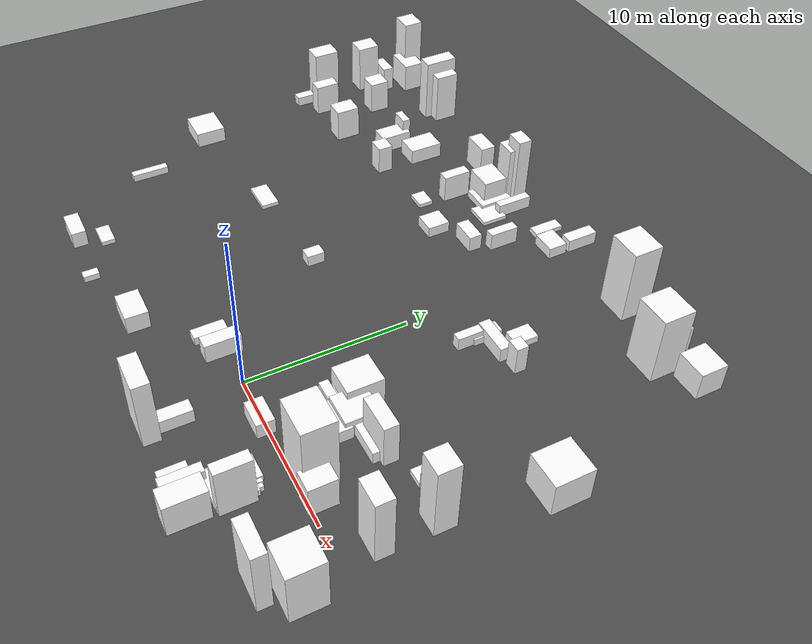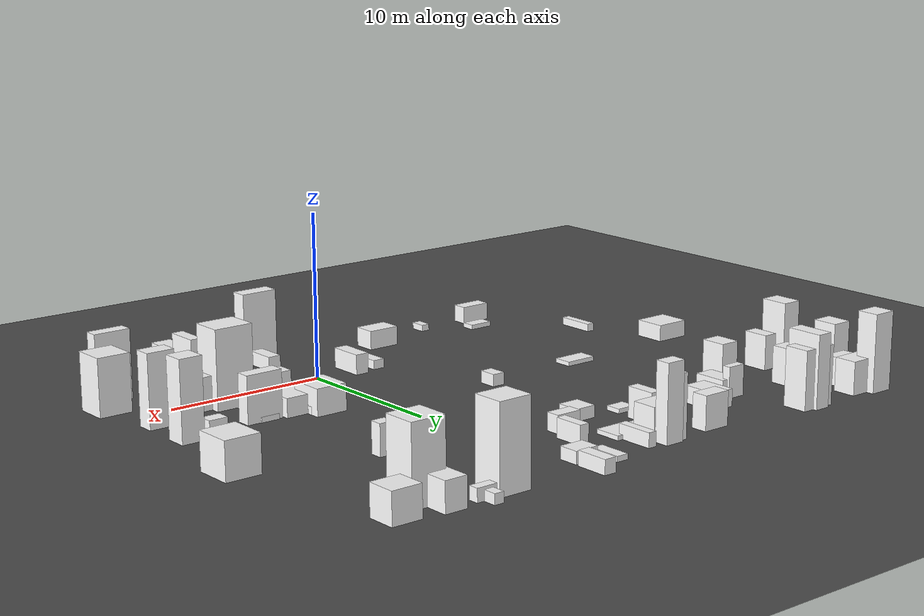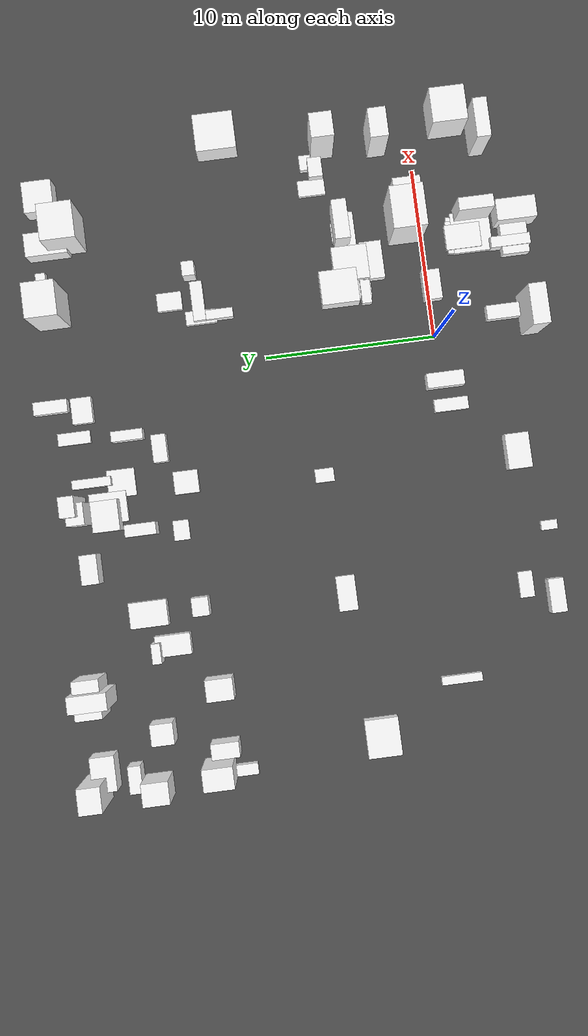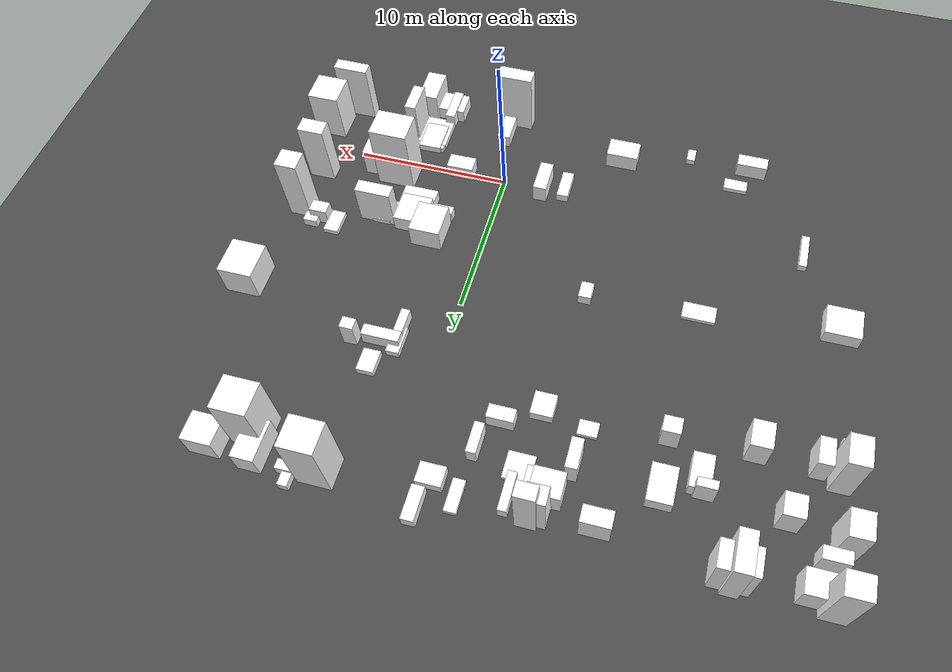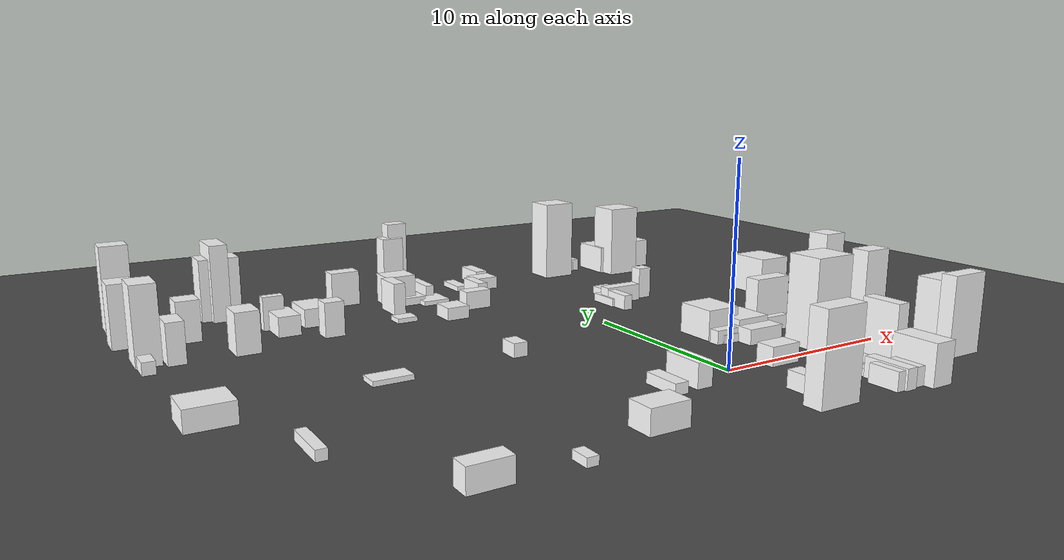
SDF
<sdf version="1.6">
 <world name="mirror_edge_world">
  <model name="ground_plane">
   <static>true</static>
   <link name="link">
    <collision name="collision">
     <geometry><plane><normal>0 0 1</normal><size>100 100</size></plane></geometry>
    </collision>
    <visual name="visual">
     <geometry><plane><normal>0 0 1</normal><size>100 100</size></plane></geometry>
     <material>
      <ambient>0.3 0.3 0.3 1</ambient>
      <diffuse>0.3 0.3 0.3 1</diffuse>
      <specular>0.5 0.5 0.5 1</specular>
      <emissive>0 0 0 1</emissive>
     </material>
    </visual>
   </link>
  </model>
  <model name="block_5_14">
   <static>true</static>
   <link name="link">
    <pose>-15.917238250033337 -4.956429099837492 0.5423257794872385 0 0 0</pose>
    <collision name="collision">
     <geometry><box><size>1.9749668268119964 0.9112826215340482 1.084651558974477</size></box></geometry>
    </collision>
    <visual name="visual">
     <geometry><box><size>1.9749668268119964 0.9112826215340482 1.084651558974477</size></box></geometry>
     <material>
      <ambient>1 1 1 1</ambient>
      <diffuse>1 1 1 1</diffuse>
      <specular>0.9 0.9 0.9 1</specular>
      <emissive>0.05 0.05 0.05 1</emissive>
     </material>
    </visual>
   </link>
  </model>
  <model name="block_5_16">
   <static>true</static>
   <link name="link">
    <pose>-23.491141968591112 22.671869514893196 2.3640952502613852 0 0 0</pose>
    <visual name="visual">
     <geometry><box><size>1.4648948011584344 1.3251803041514882 4.7281905005227705</size></box></geometry>
     <material>
      <ambient>1 1 1 1</ambient>
      <diffuse>1 1 1 1</diffuse>
      <specular>0.9 0.9 0.9 1</specular>
      <emissive>0.05 0.05 0.05 1</emissive>
     </material>
    </visual>
   </link>
  </model>
  <model name="block_5_18">
   <static>true</static>
   <link name="link">
    <pose>-7.313569092465531 7.492787176944208 0.3692666784234066 0 0 0</pose>
    <collision name="collision">
     <geometry><box><size>0.7918338357722503 1.1133182943568682 0.7385333568468132</size></box></geometry>
    </collision>
    <visual name="visual">
     <geometry><box><size>0.7918338357722503 1.1133182943568682 0.7385333568468132</size></box></geometry>
     <material>
      <ambient>1 1 1 1</ambient>
      <diffuse>1 1 1 1</diffuse>
      <specular>0.9 0.9 0.9 1</specular>
      <emissive>0.05 0.05 0.05 1</emissive>
     </material>
    </visual>
   </link>
  </model>
  <model name="block_5_22">
   <static>true</static>
   <link name="link">
    <pose>3.615861639897883 4.548811013800472 0.232802934241281 0 0 0</pose>
    <collision name="collision">
     <geometry><box><size>1.6739125095529401 2.438285539869783 0.465605868482562</size></box></geometry>
    </collision>
    <visual name="visual">
     <geometry><box><size>1.6739125095529401 2.438285539869783 0.465605868482562</size></box></geometry>
     <material>
      <ambient>1 1 1 1</ambient>
      <diffuse>1 1 1 1</diffuse>
      <specular>0.9 0.9 0.9 1</specular>
      <emissive>0.05 0.05 0.05 1</emissive>
     </material>
    </visual>
   </link>
  </model>
  <model name="block_5_23">
   <static>true</static>
   <link name="link">
    <pose>6.62316292652234 -5.491243682433662 1.046759554094003 0 0 0</pose>
    <visual name="visual">
     <geometry><box><size>1.2645972734618283 2.3397156822050924 2.093519108188006</size></box></geometry>
     <material>
      <ambient>1 1 1 1</ambient>
      <diffuse>1 1 1 1</diffuse>
      <specular>0.9 0.9 0.9 1</specular>
      <emissive>0.05 0.05 0.05 1</emissive>
     </material>
    </visual>
   </link>
  </model>
  <model name="block_5_25">
   <static>true</static>
   <link name="link">
    <pose>5.861553515088865 22.974653182310654 0.30034088473914056 0 0 0</pose>
    <collision name="collision">
     <geometry><box><size>0.5818810882679286 1.3881890311540381 0.6006817694782811</size></box></geometry>
    </collision>
    <visual name="visual">
     <geometry><box><size>0.5818810882679286 1.3881890311540381 0.6006817694782811</size></box></geometry>
     <material>
      <ambient>1 1 1 1</ambient>
      <diffuse>1 1 1 1</diffuse>
      <specular>0.9 0.9 0.9 1</specular>
      <emissive>0.05 0.05 0.05 1</emissive>
     </material>
    </visual>
   </link>
  </model>
  <model name="block_5_26">
   <static>true</static>
   <link name="link">
    <pose>-15.924075525758779 17.431183514968993 0.5560593656284815 0 0 0</pose>
    <collision name="collision">
     <geometry><box><size>1.2238955736386536 2.0762164489710044 1.112118731256963</size></box></geometry>
    </collision>
    <visual name="visual">
     <geometry><box><size>1.2238955736386536 2.0762164489710044 1.112118731256963</size></box></geometry>
     <material>
      <ambient>1 1 1 1</ambient>
      <diffuse>1 1 1 1</diffuse>
      <specular>0.9 0.9 0.9 1</specular>
      <emissive>0.05 0.05 0.05 1</emissive>
     </material>
    </visual>
   </link>
  </model>
  <model name="block_5_28">
   <static>true</static>
   <link name="link">
    <pose>-6.674170345726491 15.555363011311186 0.35911914562952457 0 0 0</pose>
    <collision name="collision">
     <geometry><box><size>1.3325737183460413 1.4423733346995364 0.7182382912590491</size></box></geometry>
    </collision>
    <visual name="visual">
     <geometry><box><size>1.3325737183460413 1.4423733346995364 0.7182382912590491</size></box></geometry>
     <material>
      <ambient>1 1 1 1</ambient>
      <diffuse>1 1 1 1</diffuse>
      <specular>0.9 0.9 0.9 1</specular>
      <emissive>0.05 0.05 0.05 1</emissive>
     </material>
    </visual>
   </link>
  </model>
  <model name="block_5_32">
   <static>true</static>
   <link name="link">
    <pose>6.958474729123175 0.9936938653876792 2.3816490051069685 0 0 0</pose>
    <visual name="visual">
     <geometry><box><size>2.420805791954826 1.9519587133625358 4.763298010213937</size></box></geometry>
     <material>
      <ambient>1 1 1 1</ambient>
      <diffuse>1 1 1 1</diffuse>
      <specular>0.9 0.9 0.9 1</specular>
      <emissive>0.05 0.05 0.05 1</emissive>
     </material>
    </visual>
   </link>
  </model>
  <model name="block_5_38">
   <static>true</static>
   <link name="link">
    <pose>13.29215899107821 11.348682397429751 1.1172958712457783 0 0 0</pose>
    <visual name="visual">
     <geometry><box><size>2.176195344029188 2.355807993595384 2.2345917424915567</size></box></geometry>
     <material>
      <ambient>1 1 1 1</ambient>
      <diffuse>1 1 1 1</diffuse>
      <specular>0.9 0.9 0.9 1</specular>
      <emissive>0.05 0.05 0.05 1</emissive>
     </material>
    </visual>
   </link>
  </model>
  <model name="block_5_40">
   <static>true</static>
   <link name="link">
    <pose>-18.68660997281137 15.032824227670485 1.11350851349098 0 0 0</pose>
    <visual name="visual">
     <geometry><box><size>1.25951489194154 1.586833586937883 2.22701702698196</size></box></geometry>
     <material>
      <ambient>1 1 1 1</ambient>
      <diffuse>1 1 1 1</diffuse>
      <specular>0.9 0.9 0.9 1</specular>
      <emissive>0.05 0.05 0.05 1</emissive>
     </material>
    </visual>
   </link>
  </model>
  <model name="block_5_44">
   <static>true</static>
   <link name="link">
    <pose>-1.3366342636558564 22.891523352092666 0.4300783547255611 0 0 0</pose>
    <collision name="collision">
     <geometry><box><size>0.7606745630888005 2.001658056247339 0.8601567094511222</size></box></geometry>
    </collision>
    <visual name="visual">
     <geometry><box><size>0.7606745630888005 2.001658056247339 0.8601567094511222</size></box></geometry>
     <material>
      <ambient>1 1 1 1</ambient>
      <diffuse>1 1 1 1</diffuse>
      <specular>0.9 0.9 0.9 1</specular>
      <emissive>0.05 0.05 0.05 1</emissive>
     </material>
    </visual>
   </link>
  </model>
  <model name="block_5_46">
   <static>true</static>
   <link name="link">
    <pose>12.165267995494162 5.2524953994915835 2.3751740529628824 0 0 0</pose>
    <visual name="visual">
     <geometry><box><size>1.4084447623091922 1.3220078782719658 4.750348105925765</size></box></geometry>
     <material>
      <ambient>1 1 1 1</ambient>
      <diffuse>1 1 1 1</diffuse>
      <specular>0.9 0.9 0.9 1</specular>
      <emissive>0.05 0.05 0.05 1</emissive>
     </material>
    </visual>
   </link>
  </model>
  <model name="block_5_47">
   <static>true</static>
   <link name="link">
    <pose>2.985029207196888 -0.18281561170345828 0.4984508349501157 0 0 0</pose>
    <collision name="collision">
     <geometry><box><size>1.7503253886382255 1.0703476468457644 0.9969016699002314</size></box></geometry>
    </collision>
    <visual name="visual">
     <geometry><box><size>1.7503253886382255 1.0703476468457644 0.9969016699002314</size></box></geometry>
     <material>
      <ambient>1 1 1 1</ambient>
      <diffuse>1 1 1 1</diffuse>
      <specular>0.9 0.9 0.9 1</specular>
      <emissive>0.05 0.05 0.05 1</emissive>
     </material>
    </visual>
   </link>
  </model>
  <model name="block_5_48">
   <static>true</static>
   <link name="link">
    <pose>-13.982547609245161 18.637530578433516 0.5207748891168482 0 0 0</pose>
    <collision name="collision">
     <geometry><box><size>1.5036318336570618 2.216913527953066 1.0415497782336964</size></box></geometry>
    </collision>
    <visual name="visual">
     <geometry><box><size>1.5036318336570618 2.216913527953066 1.0415497782336964</size></box></geometry>
     <material>
      <ambient>1 1 1 1</ambient>
      <diffuse>1 1 1 1</diffuse>
      <specular>0.9 0.9 0.9 1</specular>
      <emissive>0.05 0.05 0.05 1</emissive>
     </material>
    </visual>
   </link>
  </model>
  <model name="block_5_50">
   <static>true</static>
   <link name="link">
    <pose>2.867176005140667 13.500686539890467 0.23646237961618355 0 0 0</pose>
    <collision name="collision">
     <geometry><box><size>0.7987239925441207 1.8289139149710587 0.4729247592323671</size></box></geometry>
    </collision>
    <visual name="visual">
     <geometry><box><size>0.7987239925441207 1.8289139149710587 0.4729247592323671</size></box></geometry>
     <material>
      <ambient>1 1 1 1</ambient>
      <diffuse>1 1 1 1</diffuse>
      <specular>0.9 0.9 0.9 1</specular>
      <emissive>0.05 0.05 0.05 1</emissive>
     </material>
    </visual>
   </link>
  </model>
  <model name="block_5_51">
   <static>true</static>
   <link name="link">
    <pose>-6.226506568951319 19.355677297719293 0.1325451653230983 0 0 0</pose>
    <collision name="collision">
     <geometry><box><size>1.617051814724297 1.6475824843612203 0.2650903306461966</size></box></geometry>
    </collision>
    <visual name="visual">
     <geometry><box><size>1.617051814724297 1.6475824843612203 0.2650903306461966</size></box></geometry>
     <material>
      <ambient>1 1 1 1</ambient>
      <diffuse>1 1 1 1</diffuse>
      <specular>0.9 0.9 0.9 1</specular>
      <emissive>0.05 0.05 0.05 1</emissive>
     </material>
    </visual>
   </link>
  </model>
  <model name="block_5_54">
   <static>true</static>
   <link name="link">
    <pose>-16.248710713457733 18.370600242034296 0.9367200094905348 0 0 0</pose>
    <visual name="visual">
     <geometry><box><size>1.1679600806620842 0.5307379248201078 1.8734400189810696</size></box></geometry>
     <material>
      <ambient>1 1 1 1</ambient>
      <diffuse>1 1 1 1</diffuse>
      <specular>0.9 0.9 0.9 1</specular>
      <emissive>0.05 0.05 0.05 1</emissive>
     </material>
    </visual>
   </link>
  </model>
  <model name="block_5_57">
   <static>true</static>
   <link name="link">
    <pose>3.7636611927391677 13.572543435520362 0.4916349561813663 0 0 0</pose>
    <collision name="collision">
     <geometry><box><size>2.3301300170269155 0.7272216203473816 0.9832699123627326</size></box></geometry>
    </collision>
    <visual name="visual">
     <geometry><box><size>2.3301300170269155 0.7272216203473816 0.9832699123627326</size></box></geometry>
     <material>
      <ambient>1 1 1 1</ambient>
      <diffuse>1 1 1 1</diffuse>
      <specular>0.9 0.9 0.9 1</specular>
      <emissive>0.05 0.05 0.05 1</emissive>
     </material>
    </visual>
   </link>
  </model>
  <model name="block_5_58">
   <static>true</static>
   <link name="link">
    <pose>-4.532499026920615 16.83897066337831 0.5345690982604312 0 0 0</pose>
    <collision name="collision">
     <geometry><box><size>1.6222646974736876 0.8524424423827315 1.0691381965208624</size></box></geometry>
    </collision>
    <visual name="visual">
     <geometry><box><size>1.6222646974736876 0.8524424423827315 1.0691381965208624</size></box></geometry>
     <material>
      <ambient>1 1 1 1</ambient>
      <diffuse>1 1 1 1</diffuse>
      <specular>0.9 0.9 0.9 1</specular>
      <emissive>0.05 0.05 0.05 1</emissive>
     </material>
    </visual>
   </link>
  </model>
  <model name="block_5_62">
   <static>true</static>
   <link name="link">
    <pose>-20.75166234353866 18.560135618040242 1.127039508987646 0 0 0</pose>
    <visual name="visual">
     <geometry><box><size>1.237376527674543 1.316728602171071 2.254079017975292</size></box></geometry>
     <material>
      <ambient>1 1 1 1</ambient>
      <diffuse>1 1 1 1</diffuse>
      <specular>0.9 0.9 0.9 1</specular>
      <emissive>0.05 0.05 0.05 1</emissive>
     </material>
    </visual>
   </link>
  </model>
  <model name="block_5_64">
   <static>true</static>
   <link name="link">
    <pose>-11.001371718843453 21.595217428561885 1.0149672532931626 0 0 0</pose>
    <visual name="visual">
     <geometry><box><size>1.723630391307076 1.003841706258513 2.0299345065863252</size></box></geometry>
     <material>
      <ambient>1 1 1 1</ambient>
      <diffuse>1 1 1 1</diffuse>
      <specular>0.9 0.9 0.9 1</specular>
      <emissive>0.05 0.05 0.05 1</emissive>
     </material>
    </visual>
   </link>
  </model>
  <model name="block_5_65">
   <static>true</static>
   <link name="link">
    <pose>5.886658119134626 -2.34740584889664 0.16107708675829552 0 0 0</pose>
    <collision name="collision">
     <geometry><box><size>2.0750890655191476 1.5937221525515946 0.32215417351659104</size></box></geometry>
    </collision>
    <visual name="visual">
     <geometry><box><size>2.0750890655191476 1.5937221525515946 0.32215417351659104</size></box></geometry>
     <material>
      <ambient>1 1 1 1</ambient>
      <diffuse>1 1 1 1</diffuse>
      <specular>0.9 0.9 0.9 1</specular>
      <emissive>0.05 0.05 0.05 1</emissive>
     </material>
    </visual>
   </link>
  </model>
  <model name="block_5_67">
   <static>true</static>
   <link name="link">
    <pose>-7.804391601042099 21.787152912587537 1.8638963719036659 0 0 0</pose>
    <visual name="visual">
     <geometry><box><size>1.2750669088418356 1.0491164719622694 3.7277927438073317</size></box></geometry>
     <material>
      <ambient>1 1 1 1</ambient>
      <diffuse>1 1 1 1</diffuse>
      <specular>0.9 0.9 0.9 1</specular>
      <emissive>0.05 0.05 0.05 1</emissive>
     </material>
    </visual>
   </link>
  </model>
  <model name="block_6_1">
   <static>true</static>
   <link name="link">
    <pose>-9.41447701005281 16.198444837449888 0.13493444091534268 0 0 0</pose>
    <collision name="collision">
     <geometry><box><size>1.1718240070536727 0.9376186232176378 0.26986888183068536</size></box></geometry>
    </collision>
    <visual name="visual">
     <geometry><box><size>1.1718240070536727 0.9376186232176378 0.26986888183068536</size></box></geometry>
     <material>
      <ambient>1 1 1 1</ambient>
      <diffuse>1 1 1 1</diffuse>
      <specular>0.9 0.9 0.9 1</specular>
      <emissive>0.05 0.05 0.05 1</emissive>
     </material>
    </visual>
   </link>
  </model>
  <model name="block_6_2">
   <static>true</static>
   <link name="link">
    <pose>-7.583831510758706 20.250656563025476 0.22913963686121303 0 0 0</pose>
    <collision name="collision">
     <geometry><box><size>1.8082864273299903 2.191042836145567 0.45827927372242605</size></box></geometry>
    </collision>
    <visual name="visual">
     <geometry><box><size>1.8082864273299903 2.191042836145567 0.45827927372242605</size></box></geometry>
     <material>
      <ambient>1 1 1 1</ambient>
      <diffuse>1 1 1 1</diffuse>
      <specular>0.9 0.9 0.9 1</specular>
      <emissive>0.05 0.05 0.05 1</emissive>
     </material>
    </visual>
   </link>
  </model>
  <model name="block_6_4">
   <static>true</static>
   <link name="link">
    <pose>4.322204897605303 22.1429980138784 2.476292145245208 0 0 0</pose>
    <visual name="visual">
     <geometry><box><size>2.026559609296995 1.8674488833776282 4.952584290490416</size></box></geometry>
     <material>
      <ambient>1 1 1 1</ambient>
      <diffuse>1 1 1 1</diffuse>
      <specular>0.9 0.9 0.9 1</specular>
      <emissive>0.05 0.05 0.05 1</emissive>
     </material>
    </visual>
   </link>
  </model>
  <model name="block_6_6">
   <static>true</static>
   <link name="link">
    <pose>4.015529305981644 15.250619000253124 0.23432607246990972 0 0 0</pose>
    <collision name="collision">
     <geometry><box><size>1.0663599697867585 1.4705413692811957 0.46865214493981944</size></box></geometry>
    </collision>
    <visual name="visual">
     <geometry><box><size>1.0663599697867585 1.4705413692811957 0.46865214493981944</size></box></geometry>
     <material>
      <ambient>1 1 1 1</ambient>
      <diffuse>1 1 1 1</diffuse>
      <specular>0.9 0.9 0.9 1</specular>
      <emissive>0.05 0.05 0.05 1</emissive>
     </material>
    </visual>
   </link>
  </model>
  <model name="block_6_9">
   <static>true</static>
   <link name="link">
    <pose>-23.805084880334206 19.19860779548564 1.7106155806381986 0 0 0</pose>
    <visual name="visual">
     <geometry><box><size>1.3005877058258764 1.5438367451241009 3.4212311612763973</size></box></geometry>
     <material>
      <ambient>1 1 1 1</ambient>
      <diffuse>1 1 1 1</diffuse>
      <specular>0.9 0.9 0.9 1</specular>
      <emissive>0.05 0.05 0.05 1</emissive>
     </material>
    </visual>
   </link>
  </model>
  <model name="block_6_10">
   <static>true</static>
   <link name="link">
    <pose>4.838967363236073 4.406924382771154 0.5707244810147849 0 0 0</pose>
    <collision name="collision">
     <geometry><box><size>2.01798066091974 2.08571297365656 1.1414489620295698</size></box></geometry>
    </collision>
    <visual name="visual">
     <geometry><box><size>2.01798066091974 2.08571297365656 1.1414489620295698</size></box></geometry>
     <material>
      <ambient>1 1 1 1</ambient>
      <diffuse>1 1 1 1</diffuse>
      <specular>0.9 0.9 0.9 1</specular>
      <emissive>0.05 0.05 0.05 1</emissive>
     </material>
    </visual>
   </link>
  </model>
  <model name="block_6_14">
   <static>true</static>
   <link name="link">
    <pose>-7.374060582291463 22.056382729543376 2.279919543232875 0 0 0</pose>
    <visual name="visual">
     <geometry><box><size>1.198424621410166 0.8876495035138414 4.55983908646575</size></box></geometry>
     <material>
      <ambient>1 1 1 1</ambient>
      <diffuse>1 1 1 1</diffuse>
      <specular>0.9 0.9 0.9 1</specular>
      <emissive>0.05 0.05 0.05 1</emissive>
     </material>
    </visual>
   </link>
  </model>
  <model name="block_6_22">
   <static>true</static>
   <link name="link">
    <pose>10.739016899635388 5.747627640750713 0.5643330187659711 0 0 0</pose>
    <collision name="collision">
     <geometry><box><size>1.1551643449347677 0.8274996691329335 1.1286660375319422</size></box></geometry>
    </collision>
    <visual name="visual">
     <geometry><box><size>1.1551643449347677 0.8274996691329335 1.1286660375319422</size></box></geometry>
     <material>
      <ambient>1 1 1 1</ambient>
      <diffuse>1 1 1 1</diffuse>
      <specular>0.9 0.9 0.9 1</specular>
      <emissive>0.05 0.05 0.05 1</emissive>
     </material>
    </visual>
   </link>
  </model>
  <model name="block_6_25">
   <static>true</static>
   <link name="link">
    <pose>12.820647491827657 -2.1994685501252005 1.7312398807299751 0 0 0</pose>
    <visual name="visual">
     <geometry><box><size>2.028708682137093 2.0350588107206597 3.4624797614599503</size></box></geometry>
     <material>
      <ambient>1 1 1 1</ambient>
      <diffuse>1 1 1 1</diffuse>
      <specular>0.9 0.9 0.9 1</specular>
      <emissive>0.05 0.05 0.05 1</emissive>
     </material>
    </visual>
   </link>
  </model>
  <model name="block_6_28">
   <static>true</static>
   <link name="link">
    <pose>-22.715920428212222 6.093022077935799 0.5194571310408118 0 0 0</pose>
    <collision name="collision">
     <geometry><box><size>2.211329191130703 1.9680660392504585 1.0389142620816236</size></box></geometry>
    </collision>
    <visual name="visual">
     <geometry><box><size>2.211329191130703 1.9680660392504585 1.0389142620816236</size></box></geometry>
     <material>
      <ambient>1 1 1 1</ambient>
      <diffuse>1 1 1 1</diffuse>
      <specular>0.9 0.9 0.9 1</specular>
      <emissive>0.05 0.05 0.05 1</emissive>
     </material>
    </visual>
   </link>
  </model>
  <model name="block_6_29">
   <static>true</static>
   <link name="link">
    <pose>3.451690119893456 5.255427677532803 0.8162525013734183 0 0 0</pose>
    <visual name="visual">
     <geometry><box><size>1.9859167684618042 2.2087280679184635 1.6325050027468366</size></box></geometry>
     <material>
      <ambient>1 1 1 1</ambient>
      <diffuse>1 1 1 1</diffuse>
      <specular>0.9 0.9 0.9 1</specular>
      <emissive>0.05 0.05 0.05 1</emissive>
     </material>
    </visual>
   </link>
  </model>
  <model name="block_6_32">
   <static>true</static>
   <link name="link">
    <pose>4.9810427577684635 -5.103444942388501 0.5182004292665228 0 0 0</pose>
    <collision name="collision">
     <geometry><box><size>0.6420677387738718 2.336511666668568 1.0364008585330455</size></box></geometry>
    </collision>
    <visual name="visual">
     <geometry><box><size>0.6420677387738718 2.336511666668568 1.0364008585330455</size></box></geometry>
     <material>
      <ambient>1 1 1 1</ambient>
      <diffuse>1 1 1 1</diffuse>
      <specular>0.9 0.9 0.9 1</specular>
      <emissive>0.05 0.05 0.05 1</emissive>
     </material>
    </visual>
   </link>
  </model>
  <model name="block_6_34">
   <static>true</static>
   <link name="link">
    <pose>10.905284560099723 22.0441493000151 0.9091606457798385 0 0 0</pose>
    <visual name="visual">
     <geometry><box><size>1.8331734142015745 1.7373770729530709 1.818321291559677</size></box></geometry>
     <material>
      <ambient>1 1 1 1</ambient>
      <diffuse>1 1 1 1</diffuse>
      <specular>0.9 0.9 0.9 1</specular>
      <emissive>0.05 0.05 0.05 1</emissive>
     </material>
    </visual>
   </link>
  </model>
  <model name="block_6_35">
   <static>true</static>
   <link name="link">
    <pose>9.71761291048059 6.080779465655312 0.17297757974627131 0 0 0</pose>
    <collision name="collision">
     <geometry><box><size>0.9469485790057861 1.6000299350933636 0.34595515949254263</size></box></geometry>
    </collision>
    <visual name="visual">
     <geometry><box><size>0.9469485790057861 1.6000299350933636 0.34595515949254263</size></box></geometry>
     <material>
      <ambient>1 1 1 1</ambient>
      <diffuse>1 1 1 1</diffuse>
      <specular>0.9 0.9 0.9 1</specular>
      <emissive>0.05 0.05 0.05 1</emissive>
     </material>
    </visual>
   </link>
  </model>
  <model name="block_6_36">
   <static>true</static>
   <link name="link">
    <pose>-23.158807626965846 20.433821576945746 0.8672326287643182 0 0 0</pose>
    <visual name="visual">
     <geometry><box><size>1.5742017536859794 0.7496531986823776 1.7344652575286363</size></box></geometry>
     <material>
      <ambient>1 1 1 1</ambient>
      <diffuse>1 1 1 1</diffuse>
      <specular>0.9 0.9 0.9 1</specular>
      <emissive>0.05 0.05 0.05 1</emissive>
     </material>
    </visual>
   </link>
  </model>
  <model name="block_6_38">
   <static>true</static>
   <link name="link">
    <pose>0.5971662998336882 -5.608133096275856 2.2162670239145457 0 0 0</pose>
    <visual name="visual">
     <geometry><box><size>2.3271763303437867 1.0052781407908515 4.432534047829091</size></box></geometry>
     <material>
      <ambient>1 1 1 1</ambient>
      <diffuse>1 1 1 1</diffuse>
      <specular>0.9 0.9 0.9 1</specular>
      <emissive>0.05 0.05 0.05 1</emissive>
     </material>
    </visual>
   </link>
  </model>
  <model name="block_6_40">
   <static>true</static>
   <link name="link">
    <pose>11.195217236133622 6.000094238005629 0.28739905398507576 0 0 0</pose>
    <collision name="collision">
     <geometry><box><size>0.8918686087369574 1.2326152024253074 0.5747981079701515</size></box></geometry>
    </collision>
    <visual name="visual">
     <geometry><box><size>0.8918686087369574 1.2326152024253074 0.5747981079701515</size></box></geometry>
     <material>
      <ambient>1 1 1 1</ambient>
      <diffuse>1 1 1 1</diffuse>
      <specular>0.9 0.9 0.9 1</specular>
      <emissive>0.05 0.05 0.05 1</emissive>
     </material>
    </visual>
   </link>
  </model>
  <model name="block_6_46">
   <static>true</static>
   <link name="link">
    <pose>6.8403085908592836 4.816759785253519 0.16404614218990898 0 0 0</pose>
    <collision name="collision">
     <geometry><box><size>1.1670901919372536 0.8710452150400043 0.32809228437981797</size></box></geometry>
    </collision>
    <visual name="visual">
     <geometry><box><size>1.1670901919372536 0.8710452150400043 0.32809228437981797</size></box></geometry>
     <material>
      <ambient>1 1 1 1</ambient>
      <diffuse>1 1 1 1</diffuse>
      <specular>0.9 0.9 0.9 1</specular>
      <emissive>0.05 0.05 0.05 1</emissive>
     </material>
    </visual>
   </link>
  </model>
  <model name="block_6_48">
   <static>true</static>
   <link name="link">
    <pose>6.763240218402171 4.156781225892433 0.39246618303165615 0 0 0</pose>
    <collision name="collision">
     <geometry><box><size>2.2679726172472883 0.5393860916760558 0.7849323660633123</size></box></geometry>
    </collision>
    <visual name="visual">
     <geometry><box><size>2.2679726172472883 0.5393860916760558 0.7849323660633123</size></box></geometry>
     <material>
      <ambient>1 1 1 1</ambient>
      <diffuse>1 1 1 1</diffuse>
      <specular>0.9 0.9 0.9 1</specular>
      <emissive>0.05 0.05 0.05 1</emissive>
     </material>
    </visual>
   </link>
  </model>
  <model name="block_6_50">
   <static>true</static>
   <link name="link">
    <pose>-3.5463586082538505 18.62273638840002 0.582667340993771 0 0 0</pose>
    <collision name="collision">
     <geometry><box><size>0.6008350057313132 1.861517766761506 1.165334681987542</size></box></geometry>
    </collision>
    <visual name="visual">
     <geometry><box><size>0.6008350057313132 1.861517766761506 1.165334681987542</size></box></geometry>
     <material>
      <ambient>1 1 1 1</ambient>
      <diffuse>1 1 1 1</diffuse>
      <specular>0.9 0.9 0.9 1</specular>
      <emissive>0.05 0.05 0.05 1</emissive>
     </material>
    </visual>
   </link>
  </model>
  <model name="block_6_52">
   <static>true</static>
   <link name="link">
    <pose>11.595283030967423 -3.8745483126636464 2.0820522754550677 0 0 0</pose>
    <visual name="visual">
     <geometry><box><size>2.2572255427669283 0.8201906155412846 4.164104550910135</size></box></geometry>
     <material>
      <ambient>1 1 1 1</ambient>
      <diffuse>1 1 1 1</diffuse>
      <specular>0.9 0.9 0.9 1</specular>
      <emissive>0.05 0.05 0.05 1</emissive>
     </material>
    </visual>
   </link>
  </model>
  <model name="block_6_54">
   <static>true</static>
   <link name="link">
    <pose>-23.56294356825317 14.588723445856424 0.3323249927597343 0 0 0</pose>
    <collision name="collision">
     <geometry><box><size>0.6549584269069468 2.290463651601889 0.6646499855194686</size></box></geometry>
    </collision>
    <visual name="visual">
     <geometry><box><size>0.6549584269069468 2.290463651601889 0.6646499855194686</size></box></geometry>
     <material>
      <ambient>1 1 1 1</ambient>
      <diffuse>1 1 1 1</diffuse>
      <specular>0.9 0.9 0.9 1</specular>
      <emissive>0.05 0.05 0.05 1</emissive>
     </material>
    </visual>
   </link>
  </model>
  <model name="block_6_55">
   <static>true</static>
   <link name="link">
    <pose>-18.270781380257386 22.247785001523496 2.187812309950746 0 0 0</pose>
    <visual name="visual">
     <geometry><box><size>0.9859112495598883 2.2367359198248407 4.375624619901492</size></box></geometry>
     <material>
      <ambient>1 1 1 1</ambient>
      <diffuse>1 1 1 1</diffuse>
      <specular>0.9 0.9 0.9 1</specular>
      <emissive>0.05 0.05 0.05 1</emissive>
     </material>
    </visual>
   </link>
  </model>
  <model name="block_6_57">
   <static>true</static>
   <link name="link">
    <pose>-23.331819072840254 15.586131529451656 2.0396585845116455 0 0 0</pose>
    <visual name="visual">
     <geometry><box><size>1.2595766912495028 1.753697864054242 4.079317169023291</size></box></geometry>
     <material>
      <ambient>1 1 1 1</ambient>
      <diffuse>1 1 1 1</diffuse>
      <specular>0.9 0.9 0.9 1</specular>
      <emissive>0.05 0.05 0.05 1</emissive>
     </material>
    </visual>
   </link>
  </model>
  <model name="block_6_58">
   <static>true</static>
   <link name="link">
    <pose>8.707369967961696 20.783265776816044 2.2456819694670096 0 0 0</pose>
    <visual name="visual">
     <geometry><box><size>2.1069588295138826 2.0069765349905007 4.491363938934019</size></box></geometry>
     <material>
      <ambient>1 1 1 1</ambient>
      <diffuse>1 1 1 1</diffuse>
      <specular>0.9 0.9 0.9 1</specular>
      <emissive>0.05 0.05 0.05 1</emissive>
     </material>
    </visual>
   </link>
  </model>
  <model name="block_6_59">
   <static>true</static>
   <link name="link">
    <pose>-14.28106410036295 7.07805058166372 0.13145057297304202 0 0 0</pose>
    <collision name="collision">
     <geometry><box><size>2.0613882245127297 1.1172907740485014 0.26290114594608405</size></box></geometry>
    </collision>
    <visual name="visual">
     <geometry><box><size>2.0613882245127297 1.1172907740485014 0.26290114594608405</size></box></geometry>
     <material>
      <ambient>1 1 1 1</ambient>
      <diffuse>1 1 1 1</diffuse>
      <specular>0.9 0.9 0.9 1</specular>
      <emissive>0.05 0.05 0.05 1</emissive>
     </material>
    </visual>
   </link>
  </model>
  <model name="block_6_62">
   <static>true</static>
   <link name="link">
    <pose>2.881735512882045 12.556596757381165 0.4318977290879354 0 0 0</pose>
    <collision name="collision">
     <geometry><box><size>0.5544895674599979 1.9085328354506654 0.8637954581758708</size></box></geometry>
    </collision>
    <visual name="visual">
     <geometry><box><size>0.5544895674599979 1.9085328354506654 0.8637954581758708</size></box></geometry>
     <material>
      <ambient>1 1 1 1</ambient>
      <diffuse>1 1 1 1</diffuse>
      <specular>0.9 0.9 0.9 1</specular>
      <emissive>0.05 0.05 0.05 1</emissive>
     </material>
    </visual>
   </link>
  </model>
  <model name="block_6_65">
   <static>true</static>
   <link name="link">
    <pose>8.635481177991956 0.6027122114620003 0.9965561112450401 0 0 0</pose>
    <visual name="visual">
     <geometry><box><size>1.268287088075094 1.6372259089522985 1.9931122224900801</size></box></geometry>
     <material>
      <ambient>1 1 1 1</ambient>
      <diffuse>1 1 1 1</diffuse>
      <specular>0.9 0.9 0.9 1</specular>
      <emissive>0.05 0.05 0.05 1</emissive>
     </material>
    </visual>
   </link>
  </model>
  <model name="block_6_67">
   <static>true</static>
   <link name="link">
    <pose>-6.032337896524812 21.027257908650466 0.4308081155380701 0 0 0</pose>
    <collision name="collision">
     <geometry><box><size>0.5342081234468061 2.288244106311126 0.8616162310761402</size></box></geometry>
    </collision>
    <visual name="visual">
     <geometry><box><size>0.5342081234468061 2.288244106311126 0.8616162310761402</size></box></geometry>
     <material>
      <ambient>1 1 1 1</ambient>
      <diffuse>1 1 1 1</diffuse>
      <specular>0.9 0.9 0.9 1</specular>
      <emissive>0.05 0.05 0.05 1</emissive>
     </material>
    </visual>
   </link>
  </model>
  <model name="block_7_4">
   <static>true</static>
   <link name="link">
    <pose>-1.748432891634451 21.102199253378668 0.3672416108447148 0 0 0</pose>
    <collision name="collision">
     <geometry><box><size>1.5228627894244047 1.2141621978415464 0.7344832216894296</size></box></geometry>
    </collision>
    <visual name="visual">
     <geometry><box><size>1.5228627894244047 1.2141621978415464 0.7344832216894296</size></box></geometry>
     <material>
      <ambient>1 1 1 1</ambient>
      <diffuse>1 1 1 1</diffuse>
      <specular>0.9 0.9 0.9 1</specular>
      <emissive>0.05 0.05 0.05 1</emissive>
     </material>
    </visual>
   </link>
  </model>
  <model name="block_7_5">
   <static>true</static>
   <link name="link">
    <pose>5.187839803689599 -5.361830428451009 0.47545848022375525 0 0 0</pose>
    <collision name="collision">
     <geometry><box><size>1.9837951775505018 1.5850798583393066 0.9509169604475105</size></box></geometry>
    </collision>
    <visual name="visual">
     <geometry><box><size>1.9837951775505018 1.5850798583393066 0.9509169604475105</size></box></geometry>
     <material>
      <ambient>1 1 1 1</ambient>
      <diffuse>1 1 1 1</diffuse>
      <specular>0.9 0.9 0.9 1</specular>
      <emissive>0.05 0.05 0.05 1</emissive>
     </material>
    </visual>
   </link>
  </model>
  <model name="block_7_8">
   <static>true</static>
   <link name="link">
    <pose>-9.0859487703034 18.429391825568597 0.918242332257341 0 0 0</pose>
    <visual name="visual">
     <geometry><box><size>0.7120708836536822 1.8179261036631418 1.836484664514682</size></box></geometry>
     <material>
      <ambient>1 1 1 1</ambient>
      <diffuse>1 1 1 1</diffuse>
      <specular>0.9 0.9 0.9 1</specular>
      <emissive>0.05 0.05 0.05 1</emissive>
     </material>
    </visual>
   </link>
  </model>
  <model name="block_7_9">
   <static>true</static>
   <link name="link">
    <pose>5.5817809593395005 13.868827562811813 0.9201576071979178 0 0 0</pose>
    <visual name="visual">
     <geometry><box><size>0.8440818700428989 0.734371786129068 1.8403152143958357</size></box></geometry>
     <material>
      <ambient>1 1 1 1</ambient>
      <diffuse>1 1 1 1</diffuse>
      <specular>0.9 0.9 0.9 1</specular>
      <emissive>0.05 0.05 0.05 1</emissive>
     </material>
    </visual>
   </link>
  </model>
  <model name="block_7_11">
   <static>true</static>
   <link name="link">
    <pose>-3.2860145045969418 21.794593636878798 0.1590639459018745 0 0 0</pose>
    <collision name="collision">
     <geometry><box><size>0.7334653789790431 1.9237860867614476 0.318127891803749</size></box></geometry>
    </collision>
    <visual name="visual">
     <geometry><box><size>0.7334653789790431 1.9237860867614476 0.318127891803749</size></box></geometry>
     <material>
      <ambient>1 1 1 1</ambient>
      <diffuse>1 1 1 1</diffuse>
      <specular>0.9 0.9 0.9 1</specular>
      <emissive>0.05 0.05 0.05 1</emissive>
     </material>
    </visual>
   </link>
  </model>
  <model name="block_7_12">
   <static>true</static>
   <link name="link">
    <pose>-20.022306246300097 1.0941854022803863 0.24257157624041598 0 0 0</pose>
    <collision name="collision">
     <geometry><box><size>0.503959359251223 2.379762688880959 0.48514315248083195</size></box></geometry>
    </collision>
    <visual name="visual">
     <geometry><box><size>0.503959359251223 2.379762688880959 0.48514315248083195</size></box></geometry>
     <material>
      <ambient>1 1 1 1</ambient>
      <diffuse>1 1 1 1</diffuse>
      <specular>0.9 0.9 0.9 1</specular>
      <emissive>0.05 0.05 0.05 1</emissive>
     </material>
    </visual>
   </link>
  </model>
  <model name="block_7_15">
   <static>true</static>
   <link name="link">
    <pose>-18.173632597525394 22.358991607412477 1.7688451256788134 0 0 0</pose>
    <visual name="visual">
     <geometry><box><size>2.2323533004978717 1.5535630100702513 3.5376902513576267</size></box></geometry>
     <material>
      <ambient>1 1 1 1</ambient>
      <diffuse>1 1 1 1</diffuse>
      <specular>0.9 0.9 0.9 1</specular>
      <emissive>0.05 0.05 0.05 1</emissive>
     </material>
    </visual>
   </link>
  </model>
  <model name="block_7_17">
   <static>true</static>
   <link name="link">
    <pose>12.003689025198042 2.026013669820755 2.176983280813585 0 0 0</pose>
    <visual name="visual">
     <geometry><box><size>1.68776483973312 1.0597345129333389 4.35396656162717</size></box></geometry>
     <material>
      <ambient>1 1 1 1</ambient>
      <diffuse>1 1 1 1</diffuse>
      <specular>0.9 0.9 0.9 1</specular>
      <emissive>0.05 0.05 0.05 1</emissive>
     </material>
    </visual>
   </link>
  </model>
  <model name="block_7_22">
   <static>true</static>
   <link name="link">
    <pose>-15.103427039160053 -3.3665539930372024 0.14610179213782093 0 0 0</pose>
    <collision name="collision">
     <geometry><box><size>1.5255753421080334 0.8491746281600503 0.29220358427564186</size></box></geometry>
    </collision>
    <visual name="visual">
     <geometry><box><size>1.5255753421080334 0.8491746281600503 0.29220358427564186</size></box></geometry>
     <material>
      <ambient>1 1 1 1</ambient>
      <diffuse>1 1 1 1</diffuse>
      <specular>0.9 0.9 0.9 1</specular>
      <emissive>0.05 0.05 0.05 1</emissive>
     </material>
    </visual>
   </link>
  </model>
  <model name="block_7_26">
   <static>true</static>
   <link name="link">
    <pose>-2.663402385135928 -0.20221523924744922 0.6210864173312012 0 0 0</pose>
    <collision name="collision">
     <geometry><box><size>0.8649292820830454 2.1905223671608285 1.2421728346624024</size></box></geometry>
    </collision>
    <visual name="visual">
     <geometry><box><size>0.8649292820830454 2.1905223671608285 1.2421728346624024</size></box></geometry>
     <material>
      <ambient>1 1 1 1</ambient>
      <diffuse>1 1 1 1</diffuse>
      <specular>0.9 0.9 0.9 1</specular>
      <emissive>0.05 0.05 0.05 1</emissive>
     </material>
    </visual>
   </link>
  </model>
  <model name="block_7_27">
   <static>true</static>
   <link name="link">
    <pose>-22.114481326079314 15.125270584002592 1.0806452006580152 0 0 0</pose>
    <visual name="visual">
     <geometry><box><size>0.897434136136745 1.622449890394982 2.1612904013160303</size></box></geometry>
     <material>
      <ambient>1 1 1 1</ambient>
      <diffuse>1 1 1 1</diffuse>
      <specular>0.9 0.9 0.9 1</specular>
      <emissive>0.05 0.05 0.05 1</emissive>
     </material>
    </visual>
   </link>
  </model>
  <model name="block_7_28">
   <static>true</static>
   <link name="link">
    <pose>6.991284035863334 -3.0536621607393166 1.6144387821264456 0 0 0</pose>
    <visual name="visual">
     <geometry><box><size>0.7340670054312382 2.0470633799046305 3.2288775642528913</size></box></geometry>
     <material>
      <ambient>1 1 1 1</ambient>
      <diffuse>1 1 1 1</diffuse>
      <specular>0.9 0.9 0.9 1</specular>
      <emissive>0.05 0.05 0.05 1</emissive>
     </material>
    </visual>
   </link>
  </model>
  <model name="block_7_29">
   <static>true</static>
   <link name="link">
    <pose>-4.118150612128769 -0.41658125185445005 0.2798913453805397 0 0 0</pose>
    <collision name="collision">
     <geometry><box><size>0.7446243333699059 2.0085880308124695 0.5597826907610794</size></box></geometry>
    </collision>
    <visual name="visual">
     <geometry><box><size>0.7446243333699059 2.0085880308124695 0.5597826907610794</size></box></geometry>
     <material>
      <ambient>1 1 1 1</ambient>
      <diffuse>1 1 1 1</diffuse>
      <specular>0.9 0.9 0.9 1</specular>
      <emissive>0.05 0.05 0.05 1</emissive>
     </material>
    </visual>
   </link>
  </model>
  <model name="block_7_30">
   <static>true</static>
   <link name="link">
    <pose>4.887529824097236 3.1101542805393025 0.4169127530275024 0 0 0</pose>
    <collision name="collision">
     <geometry><box><size>2.2142034021829993 1.3071255177557566 0.8338255060550048</size></box></geometry>
    </collision>
    <visual name="visual">
     <geometry><box><size>2.2142034021829993 1.3071255177557566 0.8338255060550048</size></box></geometry>
     <material>
      <ambient>1 1 1 1</ambient>
      <diffuse>1 1 1 1</diffuse>
      <specular>0.9 0.9 0.9 1</specular>
      <emissive>0.05 0.05 0.05 1</emissive>
     </material>
    </visual>
   </link>
  </model>
  <model name="block_7_31">
   <static>true</static>
   <link name="link">
    <pose>5.692047081219346 -2.433963310272195 0.2437905877301279 0 0 0</pose>
    <collision name="collision">
     <geometry><box><size>1.4722683951285647 2.0920676712164723 0.4875811754602558</size></box></geometry>
    </collision>
    <visual name="visual">
     <geometry><box><size>1.4722683951285647 2.0920676712164723 0.4875811754602558</size></box></geometry>
     <material>
      <ambient>1 1 1 1</ambient>
      <diffuse>1 1 1 1</diffuse>
      <specular>0.9 0.9 0.9 1</specular>
      <emissive>0.05 0.05 0.05 1</emissive>
     </material>
    </visual>
   </link>
  </model>
  <model name="block_7_32">
   <static>true</static>
   <link name="link">
    <pose>-8.06001549436459 20.360826316685948 0.8707272461600448 0 0 0</pose>
    <visual name="visual">
     <geometry><box><size>1.8095678379596842 1.5806296815756653 1.7414544923200896</size></box></geometry>
     <material>
      <ambient>1 1 1 1</ambient>
      <diffuse>1 1 1 1</diffuse>
      <specular>0.9 0.9 0.9 1</specular>
      <emissive>0.05 0.05 0.05 1</emissive>
     </material>
    </visual>
   </link>
  </model>
  <model name="block_7_33">
   <static>true</static>
   <link name="link">
    <pose>5.897979120625038 -2.968750608861228 0.19954800468505346 0 0 0</pose>
    <collision name="collision">
     <geometry><box><size>2.391794229382863 2.3144825579500328 0.3990960093701069</size></box></geometry>
    </collision>
    <visual name="visual">
     <geometry><box><size>2.391794229382863 2.3144825579500328 0.3990960093701069</size></box></geometry>
     <material>
      <ambient>1 1 1 1</ambient>
      <diffuse>1 1 1 1</diffuse>
      <specular>0.9 0.9 0.9 1</specular>
      <emissive>0.05 0.05 0.05 1</emissive>
     </material>
    </visual>
   </link>
  </model>
  <model name="block_7_36">
   <static>true</static>
   <link name="link">
    <pose>3.4034041062227267 3.694643343851781 0.3710325741772196 0 0 0</pose>
    <collision name="collision">
     <geometry><box><size>1.992047012131926 0.5779210295683974 0.7420651483544392</size></box></geometry>
    </collision>
    <visual name="visual">
     <geometry><box><size>1.992047012131926 0.5779210295683974 0.7420651483544392</size></box></geometry>
     <material>
      <ambient>1 1 1 1</ambient>
      <diffuse>1 1 1 1</diffuse>
      <specular>0.9 0.9 0.9 1</specular>
      <emissive>0.05 0.05 0.05 1</emissive>
     </material>
    </visual>
   </link>
  </model>
  <model name="block_7_37">
   <static>true</static>
   <link name="link">
    <pose>-11.84554417333668 -5.150495363318885 0.2007033269320913 0 0 0</pose>
    <collision name="collision">
     <geometry><box><size>0.5531691052951173 0.955857573132963 0.4014066538641826</size></box></geometry>
    </collision>
    <visual name="visual">
     <geometry><box><size>0.5531691052951173 0.955857573132963 0.4014066538641826</size></box></geometry>
     <material>
      <ambient>1 1 1 1</ambient>
      <diffuse>1 1 1 1</diffuse>
      <specular>0.9 0.9 0.9 1</specular>
      <emissive>0.05 0.05 0.05 1</emissive>
     </material>
    </visual>
   </link>
  </model>
  <model name="block_7_40">
   <static>true</static>
   <link name="link">
    <pose>7.120542719893336 4.744639087441649 1.4172501332213605 0 0 0</pose>
    <visual name="visual">
     <geometry><box><size>2.2871364816378104 0.8783701696368142 2.834500266442721</size></box></geometry>
     <material>
      <ambient>1 1 1 1</ambient>
      <diffuse>1 1 1 1</diffuse>
      <specular>0.9 0.9 0.9 1</specular>
      <emissive>0.05 0.05 0.05 1</emissive>
     </material>
    </visual>
   </link>
  </model>
  <model name="block_7_41">
   <static>true</static>
   <link name="link">
    <pose>5.701686491619721 -2.3654720414657047 0.19651271787676583 0 0 0</pose>
    <collision name="collision">
     <geometry><box><size>1.9182491310078387 1.7658477244626856 0.39302543575353166</size></box></geometry>
    </collision>
    <visual name="visual">
     <geometry><box><size>1.9182491310078387 1.7658477244626856 0.39302543575353166</size></box></geometry>
     <material>
      <ambient>1 1 1 1</ambient>
      <diffuse>1 1 1 1</diffuse>
      <specular>0.9 0.9 0.9 1</specular>
      <emissive>0.05 0.05 0.05 1</emissive>
     </material>
    </visual>
   </link>
  </model>
  <model name="block_7_42">
   <static>true</static>
   <link name="link">
    <pose>-22.58216991024391 22.162349410377 1.0142439223267674 0 0 0</pose>
    <visual name="visual">
     <geometry><box><size>2.0081710596982543 1.4206071788732761 2.028487844653535</size></box></geometry>
     <material>
      <ambient>1 1 1 1</ambient>
      <diffuse>1 1 1 1</diffuse>
      <specular>0.9 0.9 0.9 1</specular>
      <emissive>0.05 0.05 0.05 1</emissive>
     </material>
    </visual>
   </link>
  </model>
  <model name="block_7_44">
   <static>true</static>
   <link name="link">
    <pose>-13.89886546034017 15.548157102931068 0.9564948994273421 0 0 0</pose>
    <visual name="visual">
     <geometry><box><size>1.0799304833379042 0.9811433716813762 1.9129897988546842</size></box></geometry>
     <material>
      <ambient>1 1 1 1</ambient>
      <diffuse>1 1 1 1</diffuse>
      <specular>0.9 0.9 0.9 1</specular>
      <emissive>0.05 0.05 0.05 1</emissive>
     </material>
    </visual>
   </link>
  </model>
  <model name="block_7_47">
   <static>true</static>
   <link name="link">
    <pose>5.377627187940373 22.586963174355347 0.3821629679834085 0 0 0</pose>
    <collision name="collision">
     <geometry><box><size>2.438914869424267 0.5893360973219453 0.764325935966817</size></box></geometry>
    </collision>
    <visual name="visual">
     <geometry><box><size>2.438914869424267 0.5893360973219453 0.764325935966817</size></box></geometry>
     <material>
      <ambient>1 1 1 1</ambient>
      <diffuse>1 1 1 1</diffuse>
      <specular>0.9 0.9 0.9 1</specular>
      <emissive>0.05 0.05 0.05 1</emissive>
     </material>
    </visual>
   </link>
  </model>
  <model name="block_7_50">
   <static>true</static>
   <link name="link">
    <pose>8.125882583048352 21.927100703870696 0.8614663942872549 0 0 0</pose>
    <visual name="visual">
     <geometry><box><size>1.3714748813123558 2.457922116197615 1.7229327885745098</size></box></geometry>
     <material>
      <ambient>1 1 1 1</ambient>
      <diffuse>1 1 1 1</diffuse>
      <specular>0.9 0.9 0.9 1</specular>
      <emissive>0.05 0.05 0.05 1</emissive>
     </material>
    </visual>
   </link>
  </model>
  <model name="block_7_52">
   <static>true</static>
   <link name="link">
    <pose>0.9105557947728116 -4.264268770476944 0.4363206072834094 0 0 0</pose>
    <collision name="collision">
     <geometry><box><size>0.8359455246150387 2.214063478395796 0.8726412145668188</size></box></geometry>
    </collision>
    <visual name="visual">
     <geometry><box><size>0.8359455246150387 2.214063478395796 0.8726412145668188</size></box></geometry>
     <material>
      <ambient>1 1 1 1</ambient>
      <diffuse>1 1 1 1</diffuse>
      <specular>0.9 0.9 0.9 1</specular>
      <emissive>0.05 0.05 0.05 1</emissive>
     </material>
    </visual>
   </link>
  </model>
  <model name="block_7_53">
   <static>true</static>
   <link name="link">
    <pose>-7.339784637504138 -3.8500682230384826 0.5928477976605183 0 0 0</pose>
    <collision name="collision">
     <geometry><box><size>2.06635314601152 1.3958922238779847 1.1856955953210366</size></box></geometry>
    </collision>
    <visual name="visual">
     <geometry><box><size>2.06635314601152 1.3958922238779847 1.1856955953210366</size></box></geometry>
     <material>
      <ambient>1 1 1 1</ambient>
      <diffuse>1 1 1 1</diffuse>
      <specular>0.9 0.9 0.9 1</specular>
      <emissive>0.05 0.05 0.05 1</emissive>
     </material>
    </visual>
   </link>
  </model>
 </world>
</sdf>
